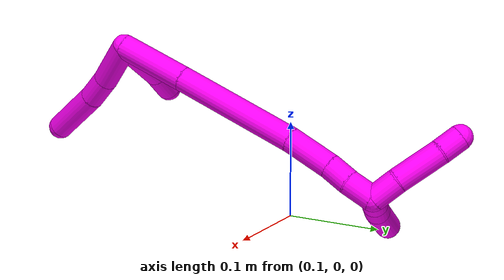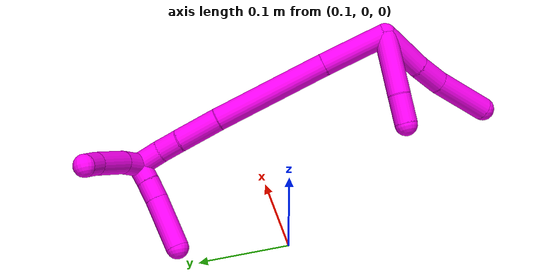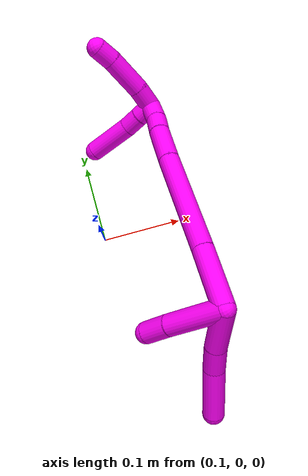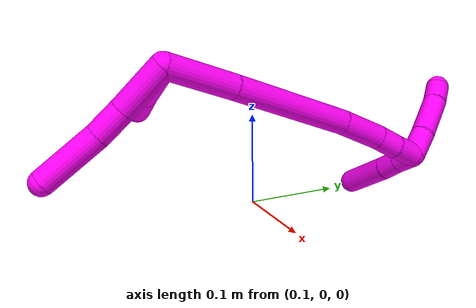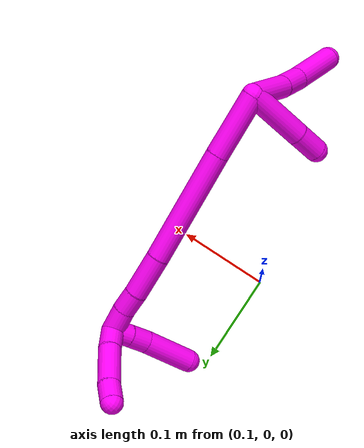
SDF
<sdf version="1.7">
 <world name="default">
  <model name="10">
   <static>0</static>
   <link name="10">
    <collision name="collision-cylinder-e_1_2_8">
     <pose>0.017205 -0.011014 -0.017681 2.58447 0.69036 1.79777</pose>
     <geometry><cylinder><radius>0.0125</radius><length>0.054034</length></cylinder></geometry>
     <surface>
      <friction><ode><mu>1.16</mu><mu2>1.16</mu2><slip1>0</slip1><slip2>0</slip2></ode></friction>
      <contact><ode><kp>1e+06</kp><kd>1</kd><max_vel>0</max_vel><min_depth>0.001</min_depth></ode></contact>
     </surface>
    </collision>
    <visual name="visual-cylinder-e_1_2_8">
     <pose>0.017205 -0.011014 -0.017681 2.58447 0.69036 1.79777</pose>
     <geometry><cylinder><radius>0.0125</radius><length>0.054034</length></cylinder></geometry>
     <material><ambient>1 0 0.964706 1</ambient></material>
    </visual>
    <collision name="collision-cylinder-e_2_8_9">
     <pose>0.045185 -0.02926 -0.044342 2.46361 0.751544 1.68289</pose>
     <geometry><cylinder><radius>0.0125</radius><length>0.031563</length></cylinder></geometry>
     <surface>
      <friction><ode><mu>1.16</mu><mu2>1.16</mu2><slip1>0</slip1><slip2>0</slip2></ode></friction>
      <contact><ode><kp>1e+06</kp><kd>1</kd><max_vel>0</max_vel><min_depth>0.001</min_depth></ode></contact>
     </surface>
    </collision>
    <visual name="visual-cylinder-e_2_8_9">
     <pose>0.045185 -0.02926 -0.044342 2.46361 0.751544 1.68289</pose>
     <geometry><cylinder><radius>0.0125</radius><length>0.031563</length></cylinder></geometry>
     <material><ambient>1 0 0.964706 1</ambient></material>
    </visual>
    <collision name="collision-cylinder-e_3_9_6">
     <pose>0.077269 -0.054205 -0.069727 2.31789 0.723124 1.42712</pose>
     <geometry><cylinder><radius>0.0125</radius><length>0.064403</length></cylinder></geometry>
     <surface>
      <friction><ode><mu>1.16</mu><mu2>1.16</mu2><slip1>0</slip1><slip2>0</slip2></ode></friction>
      <contact><ode><kp>1e+06</kp><kd>1</kd><max_vel>0</max_vel><min_depth>0.001</min_depth></ode></contact>
     </surface>
    </collision>
    <visual name="visual-cylinder-e_3_9_6">
     <pose>0.077269 -0.054205 -0.069727 2.31789 0.723124 1.42712</pose>
     <geometry><cylinder><radius>0.0125</radius><length>0.064403</length></cylinder></geometry>
     <material><ambient>1 0 0.964706 1</ambient></material>
    </visual>
    <collision name="collision-cylinder-e_1_2_10">
     <pose>-0.001164 0.000242 -0.034132 -3.1345 -0.034081 2.73135</pose>
     <geometry><cylinder><radius>0.0125</radius><length>0.068305</length></cylinder></geometry>
     <surface>
      <friction><ode><mu>1.16</mu><mu2>1.16</mu2><slip1>0</slip1><slip2>0</slip2></ode></friction>
      <contact><ode><kp>1e+06</kp><kd>1</kd><max_vel>0</max_vel><min_depth>0.001</min_depth></ode></contact>
     </surface>
    </collision>
    <visual name="visual-cylinder-e_1_2_10">
     <pose>-0.001164 0.000242 -0.034132 -3.1345 -0.034081 2.73135</pose>
     <geometry><cylinder><radius>0.0125</radius><length>0.068305</length></cylinder></geometry>
     <material><ambient>1 0 0.964706 1</ambient></material>
    </visual>
    <collision name="collision-cylinder-e_2_10_5">
     <pose>-0.001308 0.000751 -0.084076 -3.12471 0.064365 -2.62869</pose>
     <geometry><cylinder><radius>0.0125</radius><length>0.031695</length></cylinder></geometry>
     <surface>
      <friction><ode><mu>1.16</mu><mu2>1.16</mu2><slip1>0</slip1><slip2>0</slip2></ode></friction>
      <contact><ode><kp>1e+06</kp><kd>1</kd><max_vel>0</max_vel><min_depth>0.001</min_depth></ode></contact>
     </surface>
    </collision>
    <visual name="visual-cylinder-e_2_10_5">
     <pose>-0.001308 0.000751 -0.084076 -3.12471 0.064365 -2.62869</pose>
     <geometry><cylinder><radius>0.0125</radius><length>0.031695</length></cylinder></geometry>
     <material><ambient>1 0 0.964706 1</ambient></material>
    </visual>
    <collision name="collision-cylinder-e_1_2_11">
     <pose>-0.003188 0.035342 -0.007465 -1.77896 -0.088035 0.108537</pose>
     <geometry><cylinder><radius>0.0125</radius><length>0.072525</length></cylinder></geometry>
     <surface>
      <friction><ode><mu>1.16</mu><mu2>1.16</mu2><slip1>0</slip1><slip2>0</slip2></ode></friction>
      <contact><ode><kp>1e+06</kp><kd>1</kd><max_vel>0</max_vel><min_depth>0.001</min_depth></ode></contact>
     </surface>
    </collision>
    <visual name="visual-cylinder-e_1_2_11">
     <pose>-0.003188 0.035342 -0.007465 -1.77896 -0.088035 0.108537</pose>
     <geometry><cylinder><radius>0.0125</radius><length>0.072525</length></cylinder></geometry>
     <material><ambient>1 0 0.964706 1</ambient></material>
    </visual>
    <collision name="collision-cylinder-e_2_11_12">
     <pose>-0.011661 0.132658 -0.02939 -1.8 -0.082855 0.104376</pose>
     <geometry><cylinder><radius>0.0125</radius><length>0.127715</length></cylinder></geometry>
     <surface>
      <friction><ode><mu>1.16</mu><mu2>1.16</mu2><slip1>0</slip1><slip2>0</slip2></ode></friction>
      <contact><ode><kp>1e+06</kp><kd>1</kd><max_vel>0</max_vel><min_depth>0.001</min_depth></ode></contact>
     </surface>
    </collision>
    <visual name="visual-cylinder-e_2_11_12">
     <pose>-0.011661 0.132658 -0.02939 -1.8 -0.082855 0.104376</pose>
     <geometry><cylinder><radius>0.0125</radius><length>0.127715</length></cylinder></geometry>
     <material><ambient>1 0 0.964706 1</ambient></material>
    </visual>
    <collision name="collision-cylinder-e_3_12_13">
     <pose>-0.01707 0.21769 -0.049416 -1.80772 -0.005224 0.006635</pose>
     <geometry><cylinder><radius>0.0125</radius><length>0.047441</length></cylinder></geometry>
     <surface>
      <friction><ode><mu>1.16</mu><mu2>1.16</mu2><slip1>0</slip1><slip2>0</slip2></ode></friction>
      <contact><ode><kp>1e+06</kp><kd>1</kd><max_vel>0</max_vel><min_depth>0.001</min_depth></ode></contact>
     </surface>
    </collision>
    <visual name="visual-cylinder-e_3_12_13">
     <pose>-0.01707 0.21769 -0.049416 -1.80772 -0.005224 0.006635</pose>
     <geometry><cylinder><radius>0.0125</radius><length>0.047441</length></cylinder></geometry>
     <material><ambient>1 0 0.964706 1</ambient></material>
    </visual>
    <collision name="collision-cylinder-e_4_13_14">
     <pose>-0.016023 0.252578 -0.057608 -1.78907 0.096339 -0.119999</pose>
     <geometry><cylinder><radius>0.0125</radius><length>0.024348</length></cylinder></geometry>
     <surface>
      <friction><ode><mu>1.16</mu><mu2>1.16</mu2><slip1>0</slip1><slip2>0</slip2></ode></friction>
      <contact><ode><kp>1e+06</kp><kd>1</kd><max_vel>0</max_vel><min_depth>0.001</min_depth></ode></contact>
     </surface>
    </collision>
    <visual name="visual-cylinder-e_4_13_14">
     <pose>-0.016023 0.252578 -0.057608 -1.78907 0.096339 -0.119999</pose>
     <geometry><cylinder><radius>0.0125</radius><length>0.024348</length></cylinder></geometry>
     <material><ambient>1 0 0.964706 1</ambient></material>
    </visual>
    <collision name="collision-cylinder-e_5_14_1">
     <pose>-0.014911 0.277798 -0.06427 -1.8637 -0.004229 0.005692</pose>
     <geometry><cylinder><radius>0.0125</radius><length>0.027971</length></cylinder></geometry>
     <surface>
      <friction><ode><mu>1.16</mu><mu2>1.16</mu2><slip1>0</slip1><slip2>0</slip2></ode></friction>
      <contact><ode><kp>1e+06</kp><kd>1</kd><max_vel>0</max_vel><min_depth>0.001</min_depth></ode></contact>
     </surface>
    </collision>
    <visual name="visual-cylinder-e_5_14_1">
     <pose>-0.014911 0.277798 -0.06427 -1.8637 -0.004229 0.005692</pose>
     <geometry><cylinder><radius>0.0125</radius><length>0.027971</length></cylinder></geometry>
     <material><ambient>1 0 0.964706 1</ambient></material>
    </visual>
    <collision name="collision-cylinder-e_1_1_15">
     <pose>-0.014489 0.288411 -0.078161 2.867 0.047024 0.33717</pose>
     <geometry><cylinder><radius>0.0125</radius><length>0.020496</length></cylinder></geometry>
     <surface>
      <friction><ode><mu>1.16</mu><mu2>1.16</mu2><slip1>0</slip1><slip2>0</slip2></ode></friction>
      <contact><ode><kp>1e+06</kp><kd>1</kd><max_vel>0</max_vel><min_depth>0.001</min_depth></ode></contact>
     </surface>
    </collision>
    <visual name="visual-cylinder-e_1_1_15">
     <pose>-0.014489 0.288411 -0.078161 2.867 0.047024 0.33717</pose>
     <geometry><cylinder><radius>0.0125</radius><length>0.020496</length></cylinder></geometry>
     <material><ambient>1 0 0.964706 1</ambient></material>
    </visual>
    <collision name="collision-cylinder-e_2_15_16">
     <pose>-0.013043 0.283288 -0.09864 2.92418 0.088308 0.769333</pose>
     <geometry><cylinder><radius>0.0125</radius><length>0.021849</length></cylinder></geometry>
     <surface>
      <friction><ode><mu>1.16</mu><mu2>1.16</mu2><slip1>0</slip1><slip2>0</slip2></ode></friction>
      <contact><ode><kp>1e+06</kp><kd>1</kd><max_vel>0</max_vel><min_depth>0.001</min_depth></ode></contact>
     </surface>
    </collision>
    <visual name="visual-cylinder-e_2_15_16">
     <pose>-0.013043 0.283288 -0.09864 2.92418 0.088308 0.769333</pose>
     <geometry><cylinder><radius>0.0125</radius><length>0.021849</length></cylinder></geometry>
     <material><ambient>1 0 0.964706 1</ambient></material>
    </visual>
    <collision name="collision-cylinder-e_3_16_4">
     <pose>-0.012315 0.275524 -0.137579 2.95254 -0.008165 -0.086067</pose>
     <geometry><cylinder><radius>0.0125</radius><length>0.057655</length></cylinder></geometry>
     <surface>
      <friction><ode><mu>1.16</mu><mu2>1.16</mu2><slip1>0</slip1><slip2>0</slip2></ode></friction>
      <contact><ode><kp>1e+06</kp><kd>1</kd><max_vel>0</max_vel><min_depth>0.001</min_depth></ode></contact>
     </surface>
    </collision>
    <visual name="visual-cylinder-e_3_16_4">
     <pose>-0.012315 0.275524 -0.137579 2.95254 -0.008165 -0.086067</pose>
     <geometry><cylinder><radius>0.0125</radius><length>0.057655</length></cylinder></geometry>
     <material><ambient>1 0 0.964706 1</ambient></material>
    </visual>
    <collision name="collision-cylinder-e_1_1_17">
     <pose>-0.028411 0.296309 -0.067442 -1.40339 -1.20204 1.05041</pose>
     <geometry><cylinder><radius>0.0125</radius><length>0.028819</length></cylinder></geometry>
     <surface>
      <friction><ode><mu>1.16</mu><mu2>1.16</mu2><slip1>0</slip1><slip2>0</slip2></ode></friction>
      <contact><ode><kp>1e+06</kp><kd>1</kd><max_vel>0</max_vel><min_depth>0.001</min_depth></ode></contact>
     </surface>
    </collision>
    <visual name="visual-cylinder-e_1_1_17">
     <pose>-0.028411 0.296309 -0.067442 -1.40339 -1.20204 1.05041</pose>
     <geometry><cylinder><radius>0.0125</radius><length>0.028819</length></cylinder></geometry>
     <material><ambient>1 0 0.964706 1</ambient></material>
    </visual>
    <collision name="collision-cylinder-e_2_17_18">
     <pose>-0.064255 0.30971 -0.068338 -1.7804 -1.20952 1.41321</pose>
     <geometry><cylinder><radius>0.0125</radius><length>0.0479</length></cylinder></geometry>
     <surface>
      <friction><ode><mu>1.16</mu><mu2>1.16</mu2><slip1>0</slip1><slip2>0</slip2></ode></friction>
      <contact><ode><kp>1e+06</kp><kd>1</kd><max_vel>0</max_vel><min_depth>0.001</min_depth></ode></contact>
     </surface>
    </collision>
    <visual name="visual-cylinder-e_2_17_18">
     <pose>-0.064255 0.30971 -0.068338 -1.7804 -1.20952 1.41321</pose>
     <geometry><cylinder><radius>0.0125</radius><length>0.0479</length></cylinder></geometry>
     <material><ambient>1 0 0.964706 1</ambient></material>
    </visual>
    <collision name="collision-cylinder-e_3_18_3">
     <pose>-0.097771 0.320904 -0.071981 -2.14413 -1.26826 1.86672</pose>
     <geometry><cylinder><radius>0.0125</radius><length>0.023282</length></cylinder></geometry>
     <surface>
      <friction><ode><mu>1.16</mu><mu2>1.16</mu2><slip1>0</slip1><slip2>0</slip2></ode></friction>
      <contact><ode><kp>1e+06</kp><kd>1</kd><max_vel>0</max_vel><min_depth>0.001</min_depth></ode></contact>
     </surface>
    </collision>
    <visual name="visual-cylinder-e_3_18_3">
     <pose>-0.097771 0.320904 -0.071981 -2.14413 -1.26826 1.86672</pose>
     <geometry><cylinder><radius>0.0125</radius><length>0.023282</length></cylinder></geometry>
     <material><ambient>1 0 0.964706 1</ambient></material>
    </visual>
    <collision name="collision-sphere-3">
     <pose>-0.108883 0.323818 -0.073862 0 -0 0</pose>
     <geometry><sphere><radius>0.0125</radius></sphere></geometry>
     <surface>
      <friction><ode><mu>1.16</mu><mu2>1.16</mu2><slip1>0</slip1><slip2>0</slip2></ode></friction>
      <contact><ode><kp>1e+06</kp><kd>1</kd><max_vel>0</max_vel><min_depth>0.001</min_depth></ode></contact>
     </surface>
    </collision>
    <visual name="visual-sphere-3">
     <pose>-0.108883 0.323818 -0.073862 0 -0 0</pose>
     <geometry><sphere><radius>0.0125</radius></sphere></geometry>
     <material><ambient>1 0 0.964706 1</ambient></material>
    </visual>
    <collision name="collision-sphere-5">
     <pose>-0.000289 0.001018 -0.099888 0 -0 0</pose>
     <geometry><sphere><radius>0.0125</radius></sphere></geometry>
     <surface>
      <friction><ode><mu>1.16</mu><mu2>1.16</mu2><slip1>0</slip1><slip2>0</slip2></ode></friction>
      <contact><ode><kp>1e+06</kp><kd>1</kd><max_vel>0</max_vel><min_depth>0.001</min_depth></ode></contact>
     </surface>
    </collision>
    <visual name="visual-sphere-5">
     <pose>-0.000289 0.001018 -0.099888 0 -0 0</pose>
     <geometry><sphere><radius>0.0125</radius></sphere></geometry>
     <material><ambient>1 0 0.964706 1</ambient></material>
    </visual>
    <collision name="collision-sphere-10">
     <pose>-0.002327 0.000484 -0.068264 0 -0 0</pose>
     <geometry><sphere><radius>0.0125</radius></sphere></geometry>
     <surface>
      <friction><ode><mu>1.16</mu><mu2>1.16</mu2><slip1>0</slip1><slip2>0</slip2></ode></friction>
      <contact><ode><kp>1e+06</kp><kd>1</kd><max_vel>0</max_vel><min_depth>0.001</min_depth></ode></contact>
     </surface>
    </collision>
    <visual name="visual-sphere-10">
     <pose>-0.002327 0.000484 -0.068264 0 -0 0</pose>
     <geometry><sphere><radius>0.0125</radius></sphere></geometry>
     <material><ambient>1 0 0.964706 1</ambient></material>
    </visual>
    <collision name="collision-sphere-6">
     <pose>0.098577 -0.071918 -0.086132 0 -0 0</pose>
     <geometry><sphere><radius>0.0125</radius></sphere></geometry>
     <surface>
      <friction><ode><mu>1.16</mu><mu2>1.16</mu2><slip1>0</slip1><slip2>0</slip2></ode></friction>
      <contact><ode><kp>1e+06</kp><kd>1</kd><max_vel>0</max_vel><min_depth>0.001</min_depth></ode></contact>
     </surface>
    </collision>
    <visual name="visual-sphere-6">
     <pose>0.098577 -0.071918 -0.086132 0 -0 0</pose>
     <geometry><sphere><radius>0.0125</radius></sphere></geometry>
     <material><ambient>1 0 0.964706 1</ambient></material>
    </visual>
    <collision name="collision-sphere-9">
     <pose>0.05596 -0.036492 -0.053322 0 -0 0</pose>
     <geometry><sphere><radius>0.0125</radius></sphere></geometry>
     <surface>
      <friction><ode><mu>1.16</mu><mu2>1.16</mu2><slip1>0</slip1><slip2>0</slip2></ode></friction>
      <contact><ode><kp>1e+06</kp><kd>1</kd><max_vel>0</max_vel><min_depth>0.001</min_depth></ode></contact>
     </surface>
    </collision>
    <visual name="visual-sphere-9">
     <pose>0.05596 -0.036492 -0.053322 0 -0 0</pose>
     <geometry><sphere><radius>0.0125</radius></sphere></geometry>
     <material><ambient>1 0 0.964706 1</ambient></material>
    </visual>
    <collision name="collision-sphere-2">
     <geometry><sphere><radius>0.0125</radius></sphere></geometry>
     <surface>
      <friction><ode><mu>1.16</mu><mu2>1.16</mu2><slip1>0</slip1><slip2>0</slip2></ode></friction>
      <contact><ode><kp>1e+06</kp><kd>1</kd><max_vel>0</max_vel><min_depth>0.001</min_depth></ode></contact>
     </surface>
    </collision>
    <visual name="visual-sphere-2">
     <geometry><sphere><radius>0.0125</radius></sphere></geometry>
     <material><ambient>1 0 0.964706 1</ambient></material>
    </visual>
    <collision name="collision-sphere-8">
     <pose>0.03441 -0.022028 -0.035361 0 -0 0</pose>
     <geometry><sphere><radius>0.0125</radius></sphere></geometry>
     <surface>
      <friction><ode><mu>1.16</mu><mu2>1.16</mu2><slip1>0</slip1><slip2>0</slip2></ode></friction>
      <contact><ode><kp>1e+06</kp><kd>1</kd><max_vel>0</max_vel><min_depth>0.001</min_depth></ode></contact>
     </surface>
    </collision>
    <visual name="visual-sphere-8">
     <pose>0.03441 -0.022028 -0.035361 0 -0 0</pose>
     <geometry><sphere><radius>0.0125</radius></sphere></geometry>
     <material><ambient>1 0 0.964706 1</ambient></material>
    </visual>
    <collision name="collision-sphere-11">
     <pose>-0.006376 0.070684 -0.014931 0 -0 0</pose>
     <geometry><sphere><radius>0.0125</radius></sphere></geometry>
     <surface>
      <friction><ode><mu>1.16</mu><mu2>1.16</mu2><slip1>0</slip1><slip2>0</slip2></ode></friction>
      <contact><ode><kp>1e+06</kp><kd>1</kd><max_vel>0</max_vel><min_depth>0.001</min_depth></ode></contact>
     </surface>
    </collision>
    <visual name="visual-sphere-11">
     <pose>-0.006376 0.070684 -0.014931 0 -0 0</pose>
     <geometry><sphere><radius>0.0125</radius></sphere></geometry>
     <material><ambient>1 0 0.964706 1</ambient></material>
    </visual>
    <collision name="collision-sphere-12">
     <pose>-0.016946 0.194632 -0.043849 0 -0 0</pose>
     <geometry><sphere><radius>0.0125</radius></sphere></geometry>
     <surface>
      <friction><ode><mu>1.16</mu><mu2>1.16</mu2><slip1>0</slip1><slip2>0</slip2></ode></friction>
      <contact><ode><kp>1e+06</kp><kd>1</kd><max_vel>0</max_vel><min_depth>0.001</min_depth></ode></contact>
     </surface>
    </collision>
    <visual name="visual-sphere-12">
     <pose>-0.016946 0.194632 -0.043849 0 -0 0</pose>
     <geometry><sphere><radius>0.0125</radius></sphere></geometry>
     <material><ambient>1 0 0.964706 1</ambient></material>
    </visual>
    <collision name="collision-sphere-13">
     <pose>-0.017194 0.240748 -0.054984 0 -0 0</pose>
     <geometry><sphere><radius>0.0125</radius></sphere></geometry>
     <surface>
      <friction><ode><mu>1.16</mu><mu2>1.16</mu2><slip1>0</slip1><slip2>0</slip2></ode></friction>
      <contact><ode><kp>1e+06</kp><kd>1</kd><max_vel>0</max_vel><min_depth>0.001</min_depth></ode></contact>
     </surface>
    </collision>
    <visual name="visual-sphere-13">
     <pose>-0.017194 0.240748 -0.054984 0 -0 0</pose>
     <geometry><sphere><radius>0.0125</radius></sphere></geometry>
     <material><ambient>1 0 0.964706 1</ambient></material>
    </visual>
    <collision name="collision-sphere-14">
     <pose>-0.014852 0.264408 -0.060232 0 -0 0</pose>
     <geometry><sphere><radius>0.0125</radius></sphere></geometry>
     <surface>
      <friction><ode><mu>1.16</mu><mu2>1.16</mu2><slip1>0</slip1><slip2>0</slip2></ode></friction>
      <contact><ode><kp>1e+06</kp><kd>1</kd><max_vel>0</max_vel><min_depth>0.001</min_depth></ode></contact>
     </surface>
    </collision>
    <visual name="visual-sphere-14">
     <pose>-0.014852 0.264408 -0.060232 0 -0 0</pose>
     <geometry><sphere><radius>0.0125</radius></sphere></geometry>
     <material><ambient>1 0 0.964706 1</ambient></material>
    </visual>
    <collision name="collision-sphere-1">
     <pose>-0.01497 0.291187 -0.068308 0 -0 0</pose>
     <geometry><sphere><radius>0.0125</radius></sphere></geometry>
     <surface>
      <friction><ode><mu>1.16</mu><mu2>1.16</mu2><slip1>0</slip1><slip2>0</slip2></ode></friction>
      <contact><ode><kp>1e+06</kp><kd>1</kd><max_vel>0</max_vel><min_depth>0.001</min_depth></ode></contact>
     </surface>
    </collision>
    <visual name="visual-sphere-1">
     <pose>-0.01497 0.291187 -0.068308 0 -0 0</pose>
     <geometry><sphere><radius>0.0125</radius></sphere></geometry>
     <material><ambient>1 0 0.964706 1</ambient></material>
    </visual>
    <collision name="collision-sphere-18">
     <pose>-0.086659 0.31799 -0.0701 0 -0 0</pose>
     <geometry><sphere><radius>0.0125</radius></sphere></geometry>
     <surface>
      <friction><ode><mu>1.16</mu><mu2>1.16</mu2><slip1>0</slip1><slip2>0</slip2></ode></friction>
      <contact><ode><kp>1e+06</kp><kd>1</kd><max_vel>0</max_vel><min_depth>0.001</min_depth></ode></contact>
     </surface>
    </collision>
    <visual name="visual-sphere-18">
     <pose>-0.086659 0.31799 -0.0701 0 -0 0</pose>
     <geometry><sphere><radius>0.0125</radius></sphere></geometry>
     <material><ambient>1 0 0.964706 1</ambient></material>
    </visual>
    <collision name="collision-sphere-15">
     <pose>-0.014007 0.285636 -0.088014 0 -0 0</pose>
     <geometry><sphere><radius>0.0125</radius></sphere></geometry>
     <surface>
      <friction><ode><mu>1.16</mu><mu2>1.16</mu2><slip1>0</slip1><slip2>0</slip2></ode></friction>
      <contact><ode><kp>1e+06</kp><kd>1</kd><max_vel>0</max_vel><min_depth>0.001</min_depth></ode></contact>
     </surface>
    </collision>
    <visual name="visual-sphere-15">
     <pose>-0.014007 0.285636 -0.088014 0 -0 0</pose>
     <geometry><sphere><radius>0.0125</radius></sphere></geometry>
     <material><ambient>1 0 0.964706 1</ambient></material>
    </visual>
    <collision name="collision-sphere-16">
     <pose>-0.01208 0.280941 -0.109266 0 -0 0</pose>
     <geometry><sphere><radius>0.0125</radius></sphere></geometry>
     <surface>
      <friction><ode><mu>1.16</mu><mu2>1.16</mu2><slip1>0</slip1><slip2>0</slip2></ode></friction>
      <contact><ode><kp>1e+06</kp><kd>1</kd><max_vel>0</max_vel><min_depth>0.001</min_depth></ode></contact>
     </surface>
    </collision>
    <visual name="visual-sphere-16">
     <pose>-0.01208 0.280941 -0.109266 0 -0 0</pose>
     <geometry><sphere><radius>0.0125</radius></sphere></geometry>
     <material><ambient>1 0 0.964706 1</ambient></material>
    </visual>
    <collision name="collision-sphere-4">
     <pose>-0.012551 0.270106 -0.165891 0 -0 0</pose>
     <geometry><sphere><radius>0.0125</radius></sphere></geometry>
     <surface>
      <friction><ode><mu>1.16</mu><mu2>1.16</mu2><slip1>0</slip1><slip2>0</slip2></ode></friction>
      <contact><ode><kp>1e+06</kp><kd>1</kd><max_vel>0</max_vel><min_depth>0.001</min_depth></ode></contact>
     </surface>
    </collision>
    <visual name="visual-sphere-4">
     <pose>-0.012551 0.270106 -0.165891 0 -0 0</pose>
     <geometry><sphere><radius>0.0125</radius></sphere></geometry>
     <material><ambient>1 0 0.964706 1</ambient></material>
    </visual>
    <collision name="collision-sphere-17">
     <pose>-0.041852 0.30143 -0.066577 0 -0 0</pose>
     <geometry><sphere><radius>0.0125</radius></sphere></geometry>
     <surface>
      <friction><ode><mu>1.16</mu><mu2>1.16</mu2><slip1>0</slip1><slip2>0</slip2></ode></friction>
      <contact><ode><kp>1e+06</kp><kd>1</kd><max_vel>0</max_vel><min_depth>0.001</min_depth></ode></contact>
     </surface>
    </collision>
    <visual name="visual-sphere-17">
     <pose>-0.041852 0.30143 -0.066577 0 -0 0</pose>
     <geometry><sphere><radius>0.0125</radius></sphere></geometry>
     <material><ambient>1 0 0.964706 1</ambient></material>
    </visual>
    <inertial>
     <pose>-0.004788 0.130154 -0.053684 0 -0 0</pose>
     <mass>0.75</mass>
     <inertia>
      <ixx>0.000288</ixx>
      <ixy>0</ixy>
      <ixz>0</ixz>
      <iyy>8.2e-05</iyy>
      <iyz>0</iyz>
      <izz>-0.000225</izz>
     </inertia>
    </inertial>
   </link>
   <pose>0.20273 -0.133954 0.18317 -0.499642 0.851882 -0.613714</pose>
  </model>
 </world>
</sdf>
